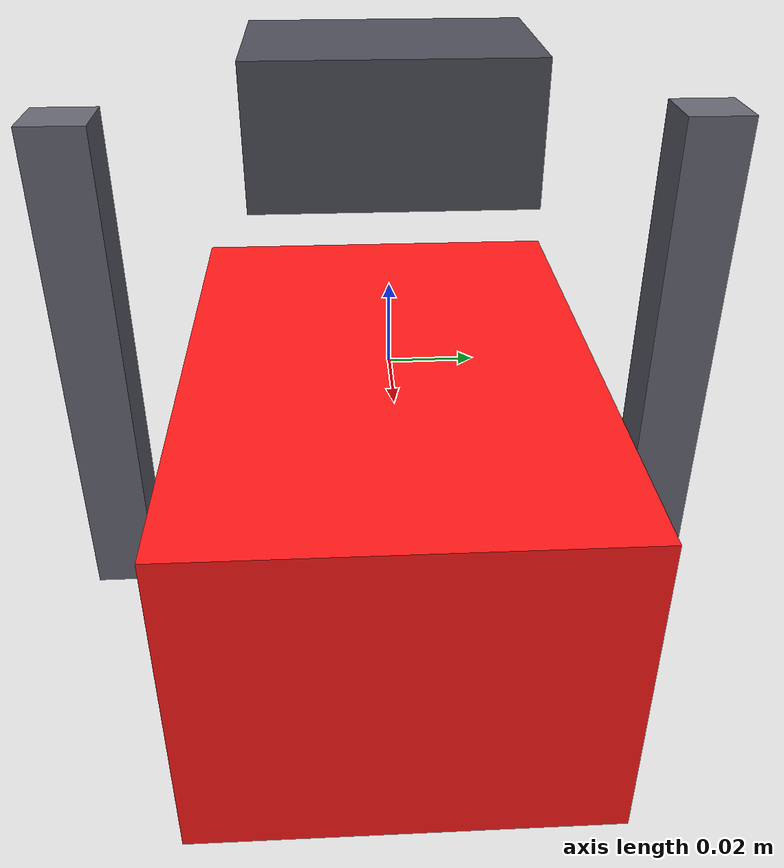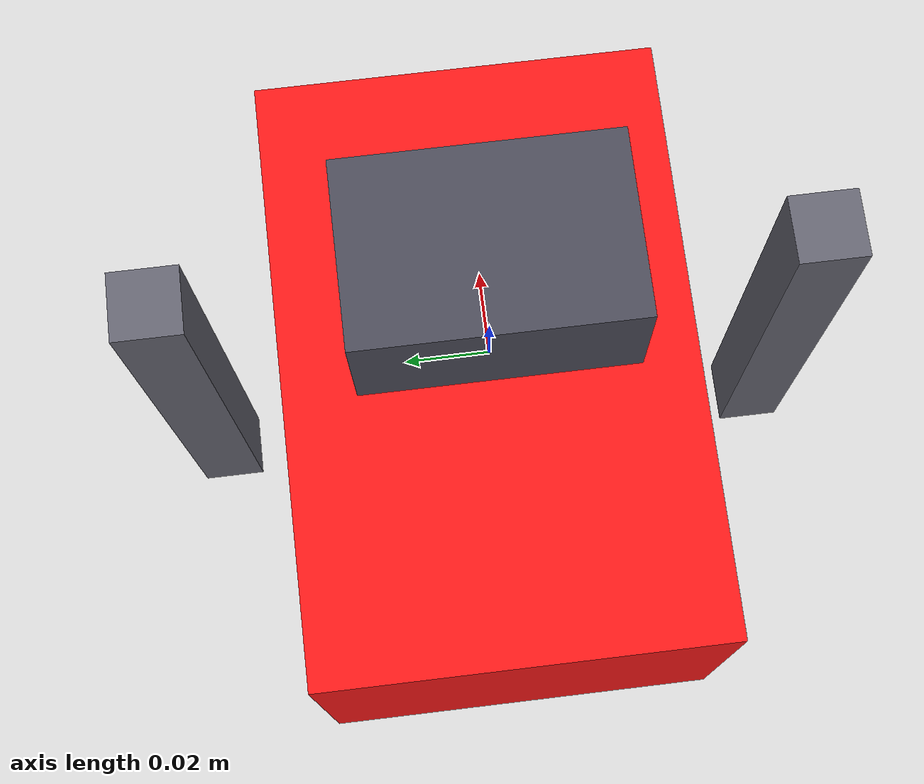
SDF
<?xml version="1.0"?>
<sdf version="1.9">
  <model name="gripper">
    <static>true</static>

    <!-- Wrist base (mount block at front of tray) -->
    <link name="wrist_base">
      <pose>0 0 0.06 0 0 0</pose>
      <visual name="wrist_visual">
        <geometry>
          <box><size>0.04 0.06 0.03</size></box>
        </geometry>
        <material>
          <ambient>0.25 0.25 0.30 1.0</ambient>
          <diffuse>0.30 0.30 0.35 1.0</diffuse>
          <specular>0.5 0.5 0.5 1.0</specular>
        </material>
      </visual>
      <collision name="wrist_collision">
        <geometry>
          <box><size>0.04 0.06 0.03</size></box>
        </geometry>
      </collision>
    </link>

    <!-- Left finger (vertical bar) -->
    <link name="finger_left">
      <pose>0 -0.07 0.0 0 0 0</pose>
      <visual name="left_finger_visual">
        <geometry>
          <box><size>0.015 0.015 0.12</size></box>
        </geometry>
        <material>
          <ambient>0.35 0.35 0.40 1.0</ambient>
          <diffuse>0.40 0.40 0.45 1.0</diffuse>
          <specular>0.6 0.6 0.6 1.0</specular>
        </material>
      </visual>
      <collision name="left_finger_collision">
        <geometry>
          <box><size>0.015 0.015 0.12</size></box>
        </geometry>
      </collision>
    </link>

    <!-- Right finger (vertical bar, mirrored) -->
    <link name="finger_right">
      <pose>0 0.07 0.0 0 0 0</pose>
      <visual name="right_finger_visual">
        <geometry>
          <box><size>0.015 0.015 0.12</size></box>
        </geometry>
        <material>
          <ambient>0.35 0.35 0.40 1.0</ambient>
          <diffuse>0.40 0.40 0.45 1.0</diffuse>
          <specular>0.6 0.6 0.6 1.0</specular>
        </material>
      </visual>
      <collision name="right_finger_collision">
        <geometry>
          <box><size>0.015 0.015 0.12</size></box>
        </geometry>
      </collision>
    </link>

    <!-- Payload held between fingers (0.15x0.10x0.08 — same as station box) -->
    <link name="payload_held">
      <pose>0 0 -0.04 0 0 0</pose>
      <visual name="payload_visual">
        <geometry>
          <box><size>0.15 0.10 0.08</size></box>
        </geometry>
        <material>
          <ambient>1.0 0.0 0.0 1.0</ambient>
          <diffuse>1.0 0.1 0.1 1.0</diffuse>
          <specular>0.8 0.2 0.2 1.0</specular>
          <emissive>0.3 0.0 0.0 1.0</emissive>
        </material>
      </visual>
    </link>

    <!-- Fixed joints — single rigid assembly -->
    <joint name="wrist_to_left" type="fixed">
      <parent>wrist_base</parent>
      <child>finger_left</child>
    </joint>
    <joint name="wrist_to_right" type="fixed">
      <parent>wrist_base</parent>
      <child>finger_right</child>
    </joint>
    <joint name="wrist_to_payload" type="fixed">
      <parent>wrist_base</parent>
      <child>payload_held</child>
    </joint>

  </model>
</sdf>
